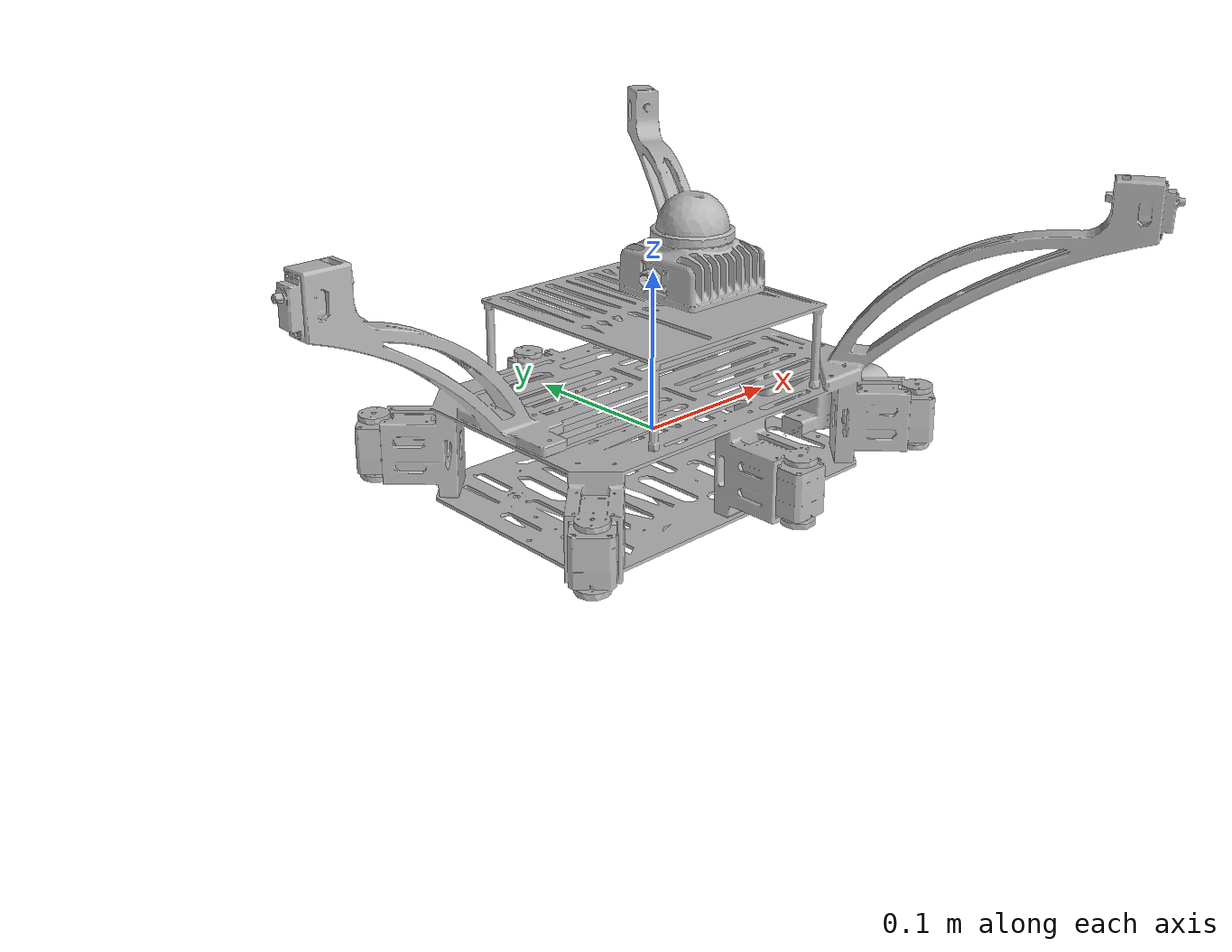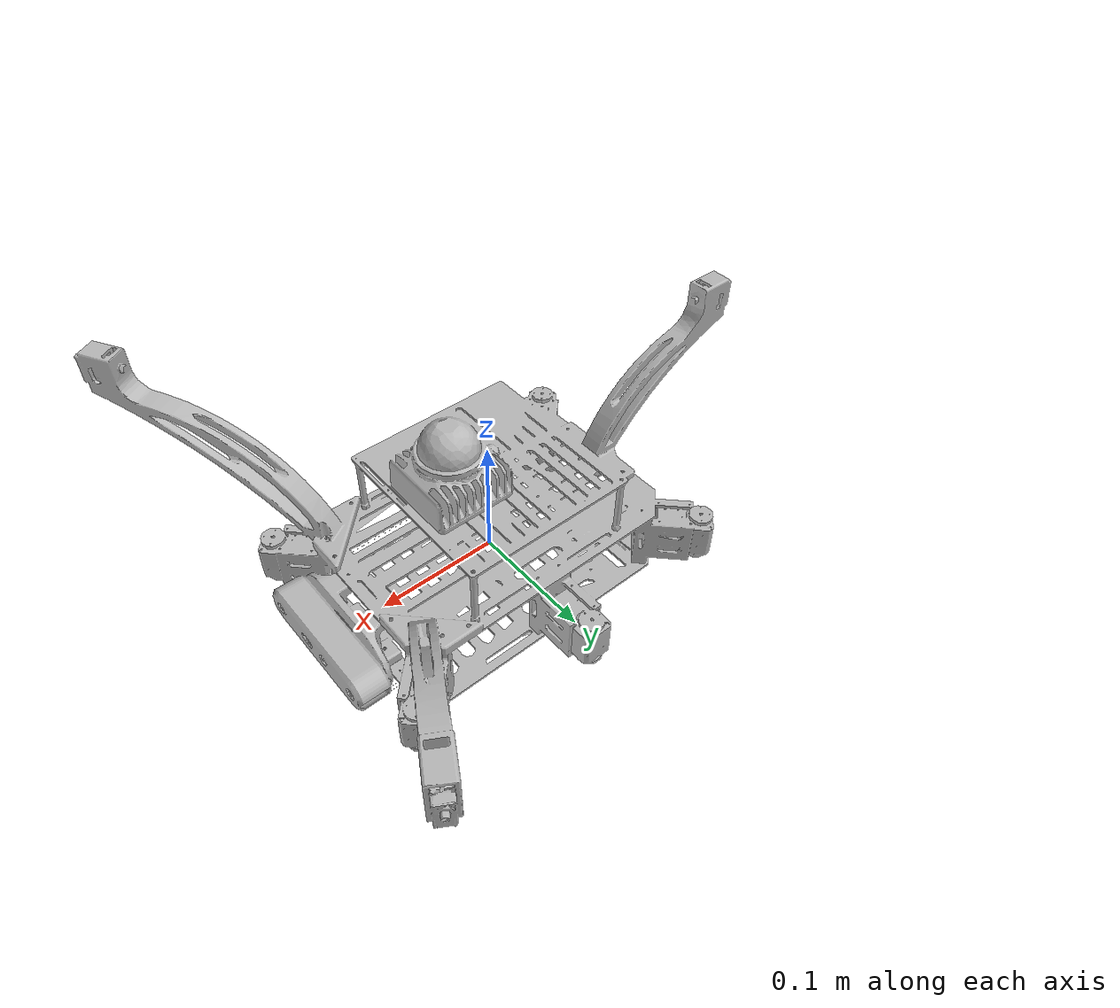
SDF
<?xml version="1.0" ?>

<sdf version="1.6">
  <model name="scorpio_base">
    <link name="base">
      <pose>0 0 0 0 0 0</pose>
      <inertial>
        <pose>0 0 0 0 0 0</pose>
        <mass>4.0</mass>
        <inertia>
          <ixx>0.02946666666666667</ixx><iyy>0.04186666666666667</iyy><izz>0.06466666666666668</izz>
          <ixy>0</ixy><ixz>0</ixz><iyz>0</iyz>
        </inertia>
      </inertial>
      <collision name="base_collision">
        <pose>0 0 0.0 0 0 0</pose>
        <geometry>
          <box><size>0.34 0.28 0.1</size></box>
        </geometry>
        <surface>
          <contact><ode><kp>1e6</kp><kd>1e3</kd></ode></contact>
          <friction><ode><mu>0.8</mu><mu2>0.8</mu2></ode></friction>
        </surface>
      </collision>
      <visual name="base_visual">
        <pose>0.0 0.0 0.0 0.0 0.0 0.0</pose>
        <geometry>
          <mesh>
            <uri>model://scorpio_base/meshes/scorpio_body.dae</uri>
            <scale>1.0 1.0 1.0</scale>
          </mesh>
        </geometry>
      </visual>
    </link>

    <link name="imu_link">
      <pose>0.0 0.0 0.06 0 0 0</pose>
      <inertial>
        <mass>0.01</mass>
        <inertia>
          <ixx>1e-6</ixx><iyy>1e-6</iyy><izz>1e-6</izz>
          <ixy>0</ixy><ixz>0</ixz><iyz>0</iyz>
        </inertia>
      </inertial>
      <sensor name="imu_sensor" type="imu">
        <pose>0 0 0 3.141593 0 0</pose>
        <always_on>1</always_on>
        <update_rate>1000.0</update_rate>
        <topic>__default_topic__</topic>
      </sensor>
    </link>
    <joint name="imu_joint" type="fixed">
      <parent>base</parent>
      <child>imu_link</child>
    </joint>
  </model>
</sdf>
